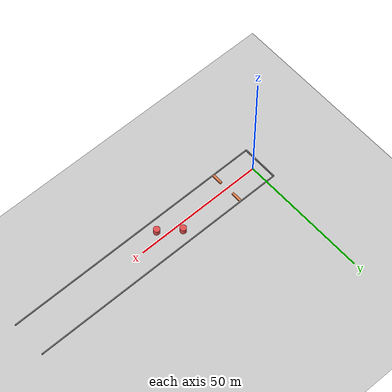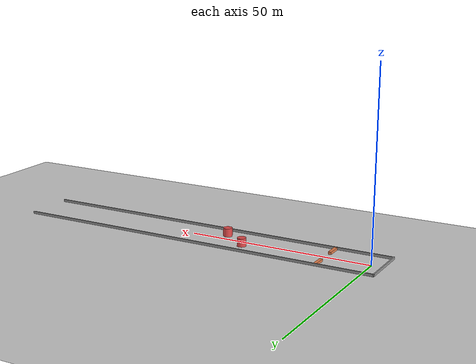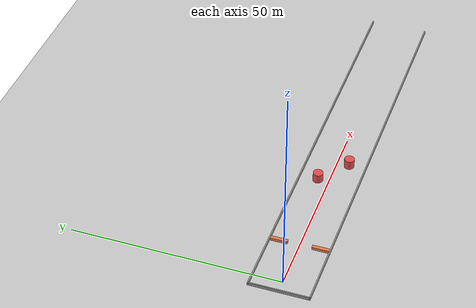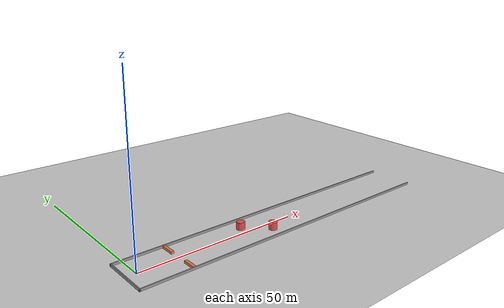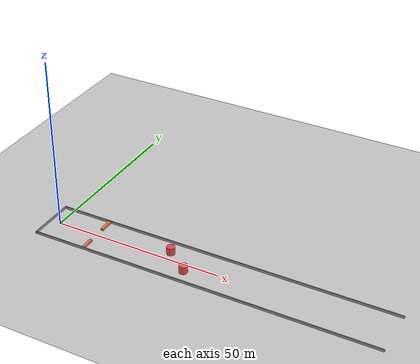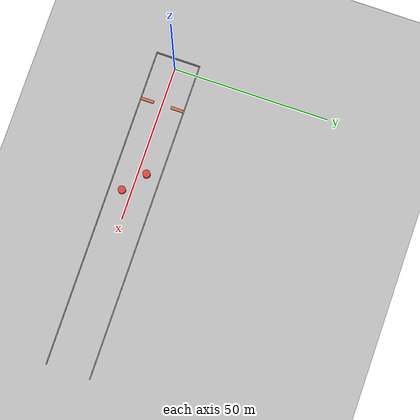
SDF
<sdf version="1.6">
 <world name="default">
  <light name="sun" type="directional">
   <pose>0 0 10 0 -0 0</pose>
   <diffuse>0.8 0.8 0.8 1</diffuse>
   <specular>0.2 0.2 0.2 1</specular>
   <attenuation>
    <range>1000</range>
    <constant>0.9</constant>
    <linear>0.01</linear>
    <quadratic>0.001</quadratic>
   </attenuation>
   <direction>-0.5 0.1 -0.9</direction>
   <spot><inner_angle>0</inner_angle><outer_angle>0</outer_angle><falloff>0</falloff></spot>
  </light>
  <model name="ground_plane">
   <static>1</static>
   <link name="link">
    <collision name="collision">
     <geometry><plane><normal>0 0 1</normal><size>100 100</size></plane></geometry>
     <surface>
      <contact><collide_bitmask>65535</collide_bitmask></contact>
      <friction><ode><mu>100</mu><mu2>50</mu2></ode></friction>
     </surface>
    </collision>
    <visual name="visual">
     <cast_shadows>0</cast_shadows>
     <geometry><plane><normal>0 0 1</normal><size>100 100</size></plane></geometry>
     <material>
      <script><uri>file://media/materials/scripts/gazebo.material</uri><name>Gazebo/Grey</name></script>
     </material>
    </visual>
   </link>
  </model>
  <gravity>0 0 -9.8</gravity>
  <magnetic_field>6e-06 2.3e-05 -4.2e-05</magnetic_field>
  <atmosphere type="adiabatic"/>
  <physics type="ode">
   <max_step_size>0.001</max_step_size>
   <real_time_factor>1</real_time_factor>
   <real_time_update_rate>1000</real_time_update_rate>
  </physics>
  <scene><ambient>0.4 0.4 0.4 1</ambient><background>0.7 0.7 0.7 1</background><shadows>1</shadows></scene>
  <spherical_coordinates>
   <surface_model>EARTH_WGS84</surface_model>
   <latitude_deg>0</latitude_deg>
   <longitude_deg>0</longitude_deg>
   <elevation>0</elevation>
   <heading_deg>0</heading_deg>
  </spherical_coordinates>
  <model name="long_C_wall">
   <pose>47.8689 0.01441 0 0 -0 0</pose>
   <link name="Wall_1">
    <collision name="Wall_1_Collision">
     <geometry><box><size>102.3 0.3 0.7</size></box></geometry>
     <pose>0 0 0.35 0 -0 0</pose>
    </collision>
    <visual name="Wall_1_Visual">
     <pose>0 0 0.35 0 -0 0</pose>
     <geometry><box><size>102.3 0.3 0.7</size></box></geometry>
     <material>
      <script><uri>file://media/materials/scripts/gazebo.material</uri><name>Gazebo/Grey</name></script>
      <ambient>1 1 1 1</ambient>
     </material>
     <meta><layer>0</layer></meta>
    </visual>
    <pose>0 -6.97997 0 0 -0 0.000392</pose>
   </link>
   <link name="Wall_3">
    <collision name="Wall_3_Collision">
     <geometry><box><size>102.3 0.3 0.7</size></box></geometry>
     <pose>0 0 0.35 0 -0 0</pose>
    </collision>
    <visual name="Wall_3_Visual">
     <pose>0 0 0.35 0 -0 0</pose>
     <geometry><box><size>102.3 0.3 0.7</size></box></geometry>
     <material>
      <script><uri>file://media/materials/scripts/gazebo.material</uri><name>Gazebo/Grey</name></script>
      <ambient>1 1 1 1</ambient>
     </material>
     <meta><layer>0</layer></meta>
    </visual>
    <pose>0 7.00003 0 0 -0 0</pose>
   </link>
   <link name="Wall_5">
    <collision name="Wall_5_Collision">
     <geometry><box><size>14.3 0.3 0.7</size></box></geometry>
     <pose>0 0 0.35 0 -0 0</pose>
    </collision>
    <visual name="Wall_5_Visual">
     <pose>0 0 0.35 0 -0 0</pose>
     <geometry><box><size>14.3 0.3 0.7</size></box></geometry>
     <material>
      <script><uri>file://media/materials/scripts/gazebo.material</uri><name>Gazebo/Grey</name></script>
      <ambient>1 1 1 1</ambient>
     </material>
     <meta><layer>0</layer></meta>
    </visual>
    <pose>-51 2.9e-05 0 0 -0 -1.5708</pose>
   </link>
   <static>1</static>
  </model>
  <model name="unit_box_clone_clone_2_clone_clone_clone_1_clone">
   <link name="link">
    <inertial>
     <mass>1</mass>
     <inertia>
      <ixx>0.166667</ixx>
      <ixy>0</ixy>
      <ixz>0</ixz>
      <iyy>0.166667</iyy>
      <iyz>0</iyz>
      <izz>0.166667</izz>
     </inertia>
    </inertial>
    <pose>-0.876493 -0.77171 0.251824 0 -0 0</pose>
    <visual name="visual">
     <geometry><box><size>0.842545 4.00607 0.7</size></box></geometry>
     <material>
      <script><name>Gazebo/Grey</name><uri>file://media/materials/scripts/gazebo.material</uri></script>
      <shader type="pixel"><normal_map>__default__</normal_map></shader>
      <ambient>0.9 0.5 0.3 1</ambient>
      <diffuse>0.7 0.7 0.7 1</diffuse>
      <specular>0.01 0.01 0.01 1</specular>
      <emissive>0 0 0 1</emissive>
     </material>
    </visual>
    <collision name="collision">
     <geometry><box><size>0.832545 4 0.486131</size></box></geometry>
     <surface>
      <friction>
       <ode><mu>1</mu><mu2>1</mu2><fdir1>0 0 0</fdir1><slip1>0</slip1><slip2>0</slip2></ode>
       <torsional>
        <coefficient>1</coefficient>
        <patch_radius>0</patch_radius>
        <surface_radius>0</surface_radius>
        <use_patch_radius>1</use_patch_radius>
        <ode><slip>0</slip></ode>
       </torsional>
      </friction>
      <bounce><restitution_coefficient>0</restitution_coefficient><threshold>1e+06</threshold></bounce>
      <contact>
       <collide_without_contact>0</collide_without_contact>
       <collide_without_contact_bitmask>1</collide_without_contact_bitmask>
       <collide_bitmask>1</collide_bitmask>
       <ode>
        <soft_cfm>0</soft_cfm>
        <soft_erp>0.2</soft_erp>
        <kp>1e+13</kp>
        <kd>1</kd>
        <max_vel>0.01</max_vel>
        <min_depth>0</min_depth>
       </ode>
       <bullet>
        <split_impulse>1</split_impulse>
        <split_impulse_penetration_threshold>-0.01</split_impulse_penetration_threshold>
        <soft_cfm>0</soft_cfm>
        <soft_erp>0.2</soft_erp>
        <kp>1e+13</kp>
        <kd>1</kd>
       </bullet>
      </contact>
     </surface>
    </collision>
   </link>
   <static>0</static>
   <pose>12.9236 5.6025 -0.009393 0.000517 -0 -5.9e-05</pose>
  </model>
  <model name="unit_box_clone_clone_2_clone_clone_clone_1_clone_clone">
   <link name="link">
    <inertial>
     <mass>1</mass>
     <inertia>
      <ixx>0.166667</ixx>
      <ixy>0</ixy>
      <ixz>0</ixz>
      <iyy>0.166667</iyy>
      <iyz>0</iyz>
      <izz>0.166667</izz>
     </inertia>
    </inertial>
    <pose>-0.876493 -0.77171 0.251824 0 -0 0</pose>
    <visual name="visual">
     <geometry><box><size>0.842545 4.00607 0.7</size></box></geometry>
     <material>
      <script><name>Gazebo/Grey</name><uri>file://media/materials/scripts/gazebo.material</uri></script>
      <shader type="pixel"><normal_map>__default__</normal_map></shader>
      <ambient>0.9 0.5 0.3 1</ambient>
      <diffuse>0.7 0.7 0.7 1</diffuse>
      <specular>0.01 0.01 0.01 1</specular>
      <emissive>0 0 0 1</emissive>
     </material>
    </visual>
    <collision name="collision">
     <geometry><box><size>0.832545 4 0.486131</size></box></geometry>
     <surface>
      <friction>
       <ode><mu>1</mu><mu2>1</mu2><fdir1>0 0 0</fdir1><slip1>0</slip1><slip2>0</slip2></ode>
       <torsional>
        <coefficient>1</coefficient>
        <patch_radius>0</patch_radius>
        <surface_radius>0</surface_radius>
        <use_patch_radius>1</use_patch_radius>
        <ode><slip>0</slip></ode>
       </torsional>
      </friction>
      <bounce><restitution_coefficient>0</restitution_coefficient><threshold>1e+06</threshold></bounce>
      <contact>
       <collide_without_contact>0</collide_without_contact>
       <collide_without_contact_bitmask>1</collide_without_contact_bitmask>
       <collide_bitmask>1</collide_bitmask>
       <ode>
        <soft_cfm>0</soft_cfm>
        <soft_erp>0.2</soft_erp>
        <kp>1e+13</kp>
        <kd>1</kd>
        <max_vel>0.01</max_vel>
        <min_depth>0</min_depth>
       </ode>
       <bullet>
        <split_impulse>1</split_impulse>
        <split_impulse_penetration_threshold>-0.01</split_impulse_penetration_threshold>
        <soft_cfm>0</soft_cfm>
        <soft_erp>0.2</soft_erp>
        <kp>1e+13</kp>
        <kd>1</kd>
       </bullet>
      </contact>
     </surface>
    </collision>
   </link>
   <static>0</static>
   <pose>13.0903 -4.02731 -0.009393 0.000517 -0 -5.9e-05</pose>
  </model>
  <model name="unit_cylinder">
   <link name="link">
    <inertial>
     <mass>1</mass>
     <inertia><ixx>0.145833</ixx><ixy>0</ixy><ixz>0</ixz><iyy>0.145833</iyy><iyz>0</iyz><izz>0.125</izz></inertia>
    </inertial>
    <visual name="visual">
     <geometry><cylinder><radius>1.2</radius><length>2.24323</length></cylinder></geometry>
     <material>
      <script><name>Gazebo/Grey</name><uri>file://media/materials/scripts/gazebo.material</uri></script>
      <shader type="pixel"><normal_map>__default__</normal_map></shader>
      <ambient>0.9 0.3 0.3 1</ambient>
      <diffuse>0.7 0.7 0.7 1</diffuse>
      <specular>0.01 0.01 0.01 1</specular>
      <emissive>0 0 0 1</emissive>
     </material>
    </visual>
    <collision name="collision">
     <geometry><cylinder><radius>1.2</radius><length>2.24323</length></cylinder></geometry>
     <surface>
      <friction>
       <ode><mu>1</mu><mu2>1</mu2><fdir1>0 0 0</fdir1><slip1>0</slip1><slip2>0</slip2></ode>
       <torsional>
        <coefficient>1</coefficient>
        <patch_radius>0</patch_radius>
        <surface_radius>0</surface_radius>
        <use_patch_radius>1</use_patch_radius>
        <ode><slip>0</slip></ode>
       </torsional>
      </friction>
      <bounce><restitution_coefficient>0</restitution_coefficient><threshold>1e+06</threshold></bounce>
      <contact>
       <collide_without_contact>0</collide_without_contact>
       <collide_without_contact_bitmask>1</collide_without_contact_bitmask>
       <collide_bitmask>1</collide_bitmask>
       <ode>
        <soft_cfm>0</soft_cfm>
        <soft_erp>0.2</soft_erp>
        <kp>1e+13</kp>
        <kd>1</kd>
        <max_vel>0.01</max_vel>
        <min_depth>0</min_depth>
       </ode>
       <bullet>
        <split_impulse>1</split_impulse>
        <split_impulse_penetration_threshold>-0.01</split_impulse_penetration_threshold>
        <soft_cfm>0</soft_cfm>
        <soft_erp>0.2</soft_erp>
        <kp>1e+13</kp>
        <kd>1</kd>
       </bullet>
      </contact>
     </surface>
    </collision>
   </link>
   <static>0</static>
   <pose>34.3732 2.6504 1.12161 0 -0 0</pose>
  </model>
  <model name="unit_cylinder_clone">
   <link name="link">
    <inertial>
     <mass>1</mass>
     <inertia><ixx>0.145833</ixx><ixy>0</ixy><ixz>0</ixz><iyy>0.145833</iyy><iyz>0</iyz><izz>0.125</izz></inertia>
    </inertial>
    <visual name="visual">
     <geometry><cylinder><radius>1.2</radius><length>2.24323</length></cylinder></geometry>
     <material>
      <script><name>Gazebo/Grey</name><uri>file://media/materials/scripts/gazebo.material</uri></script>
      <shader type="pixel"><normal_map>__default__</normal_map></shader>
      <ambient>0.9 0.3 0.3 1</ambient>
      <diffuse>0.7 0.7 0.7 1</diffuse>
      <specular>0.01 0.01 0.01 1</specular>
      <emissive>0 0 0 1</emissive>
     </material>
    </visual>
    <collision name="collision">
     <geometry><cylinder><radius>1.2</radius><length>2.24323</length></cylinder></geometry>
     <surface>
      <friction>
       <ode><mu>1</mu><mu2>1</mu2><fdir1>0 0 0</fdir1><slip1>0</slip1><slip2>0</slip2></ode>
       <torsional>
        <coefficient>1</coefficient>
        <patch_radius>0</patch_radius>
        <surface_radius>0</surface_radius>
        <use_patch_radius>1</use_patch_radius>
        <ode><slip>0</slip></ode>
       </torsional>
      </friction>
      <bounce><restitution_coefficient>0</restitution_coefficient><threshold>1e+06</threshold></bounce>
      <contact>
       <collide_without_contact>0</collide_without_contact>
       <collide_without_contact_bitmask>1</collide_without_contact_bitmask>
       <collide_bitmask>1</collide_bitmask>
       <ode>
        <soft_cfm>0</soft_cfm>
        <soft_erp>0.2</soft_erp>
        <kp>1e+13</kp>
        <kd>1</kd>
        <max_vel>0.01</max_vel>
        <min_depth>0</min_depth>
       </ode>
       <bullet>
        <split_impulse>1</split_impulse>
        <split_impulse_penetration_threshold>-0.01</split_impulse_penetration_threshold>
        <soft_cfm>0</soft_cfm>
        <soft_erp>0.2</soft_erp>
        <kp>1e+13</kp>
        <kd>1</kd>
       </bullet>
      </contact>
     </surface>
    </collision>
   </link>
   <static>0</static>
   <pose>41.4225 -2.88721 1.12161 0 -0 0</pose>
  </model>
 </world>
</sdf>
